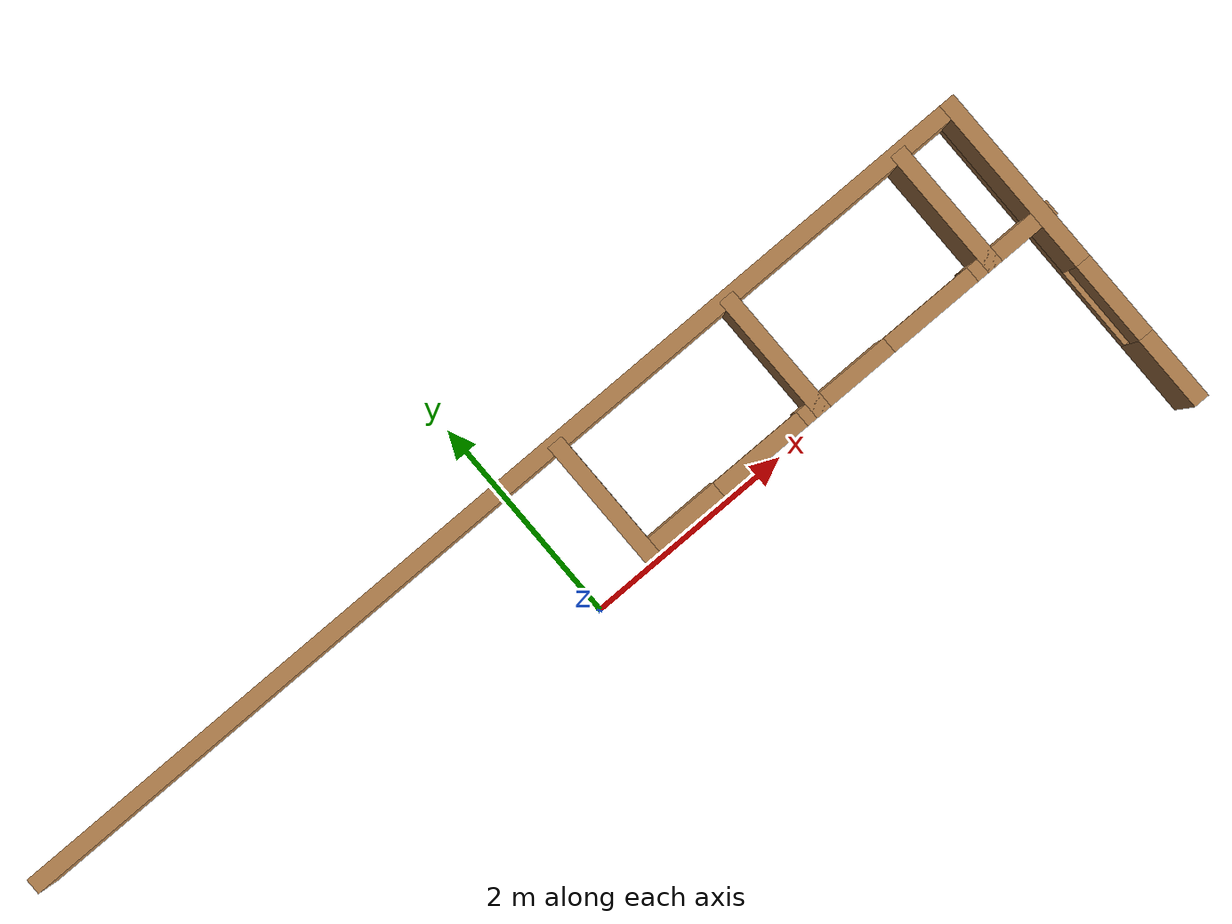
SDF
<sdf version="1.7">
 <model name="room">
  <link name="Wall_14">
   <pose>0.635 0.6925 0 0 -0 1.5708</pose>
   <visual name="Wall_14_Visual">
    <pose>0 0 1.25 0 -0 0</pose>
    <geometry><box><size>1.25 0.15 2.5</size></box></geometry>
    <material>
     <script><uri>file://media/materials/scripts/gazebo.material</uri><name>Gazebo/Wood</name></script>
     <ambient>1 1 1 1</ambient>
     <shader type="pixel"/>
    </material>
    <meta><layer>0</layer></meta>
   </visual>
   <collision name="Wall_14_Collision">
    <pose>0 0 1.25 0 -0 0</pose>
    <geometry><box><size>1.25 0.15 2.5</size></box></geometry>
    <surface>
     <friction>
      <ode><mu>1</mu><mu2>1</mu2><fdir1>0 0 0</fdir1><slip1>0</slip1><slip2>0</slip2></ode>
      <torsional>
       <coefficient>1</coefficient>
       <patch_radius>0</patch_radius>
       <surface_radius>0</surface_radius>
       <use_patch_radius>1</use_patch_radius>
       <ode><slip>0</slip></ode>
      </torsional>
     </friction>
     <bounce><restitution_coefficient>0</restitution_coefficient><threshold>1e+06</threshold></bounce>
     <contact>
      <collide_without_contact>0</collide_without_contact>
      <collide_without_contact_bitmask>1</collide_without_contact_bitmask>
      <collide_bitmask>1</collide_bitmask>
      <ode>
       <soft_cfm>0</soft_cfm>
       <soft_erp>0.2</soft_erp>
       <kp>1e+13</kp>
       <kd>1</kd>
       <max_vel>0.01</max_vel>
       <min_depth>0</min_depth>
      </ode>
      <bullet>
       <split_impulse>1</split_impulse>
       <split_impulse_penetration_threshold>-0.01</split_impulse_penetration_threshold>
       <soft_cfm>0</soft_cfm>
       <soft_erp>0.2</soft_erp>
       <kp>1e+13</kp>
       <kd>1</kd>
      </bullet>
     </contact>
    </surface>
   </collision>
  </link>
  <link name="Wall_3">
   <pose>4.915 -0.2475 0 0 -0 1.5708</pose>
   <visual name="Wall_3_Visual_0">
    <pose>-1.26897 0 1.25 0 -0 0</pose>
    <geometry><box><size>0.712063 0.15 2.5</size></box></geometry>
    <material>
     <script><uri>file://media/materials/scripts/gazebo.material</uri><name>Gazebo/Wood</name></script>
     <ambient>1 1 1 1</ambient>
     <shader type="pixel"/>
    </material>
    <meta><layer>0</layer></meta>
   </visual>
   <visual name="Wall_3_Visual_1">
    <pose>0.356032 0 0.25 0 -0 0</pose>
    <geometry><box><size>2.53794 0.15 0.5</size></box></geometry>
    <material>
     <script><uri>file://media/materials/scripts/gazebo.material</uri><name>Gazebo/Wood</name></script>
     <ambient>1 1 1 1</ambient>
     <shader type="pixel"/>
    </material>
    <meta><layer>0</layer></meta>
   </visual>
   <visual name="Wall_3_Visual_3">
    <pose>-0.512937 0 1.9 0 -0 0</pose>
    <geometry><box><size>0.8 0.15 1.2</size></box></geometry>
    <material>
     <script><uri>file://media/materials/scripts/gazebo.material</uri><name>Gazebo/Wood</name></script>
     <ambient>1 1 1 1</ambient>
     <shader type="pixel"/>
    </material>
    <meta><layer>0</layer></meta>
   </visual>
   <visual name="Wall_3_Visual_2">
    <pose>0.756032 0 1.5 0 -0 0</pose>
    <geometry><box><size>1.73794 0.15 2</size></box></geometry>
    <material>
     <script><uri>file://media/materials/scripts/gazebo.material</uri><name>Gazebo/Wood</name></script>
     <ambient>1 1 1 1</ambient>
     <shader type="pixel"/>
    </material>
    <meta><layer>0</layer></meta>
   </visual>
   <collision name="Wall_3_Collision_0">
    <pose>-1.26897 0 1.25 0 -0 0</pose>
    <geometry><box><size>0.712063 0.15 2.5</size></box></geometry>
    <surface>
     <friction>
      <ode><mu>1</mu><mu2>1</mu2><fdir1>0 0 0</fdir1><slip1>0</slip1><slip2>0</slip2></ode>
      <torsional>
       <coefficient>1</coefficient>
       <patch_radius>0</patch_radius>
       <surface_radius>0</surface_radius>
       <use_patch_radius>1</use_patch_radius>
       <ode><slip>0</slip></ode>
      </torsional>
     </friction>
     <bounce><restitution_coefficient>0</restitution_coefficient><threshold>1e+06</threshold></bounce>
     <contact>
      <collide_without_contact>0</collide_without_contact>
      <collide_without_contact_bitmask>1</collide_without_contact_bitmask>
      <collide_bitmask>1</collide_bitmask>
      <ode>
       <soft_cfm>0</soft_cfm>
       <soft_erp>0.2</soft_erp>
       <kp>1e+13</kp>
       <kd>1</kd>
       <max_vel>0.01</max_vel>
       <min_depth>0</min_depth>
      </ode>
      <bullet>
       <split_impulse>1</split_impulse>
       <split_impulse_penetration_threshold>-0.01</split_impulse_penetration_threshold>
       <soft_cfm>0</soft_cfm>
       <soft_erp>0.2</soft_erp>
       <kp>1e+13</kp>
       <kd>1</kd>
      </bullet>
     </contact>
    </surface>
   </collision>
   <collision name="Wall_3_Collision_1">
    <pose>0.356032 0 0.25 0 -0 0</pose>
    <geometry><box><size>2.53794 0.15 0.5</size></box></geometry>
    <surface>
     <friction>
      <ode><mu>1</mu><mu2>1</mu2><fdir1>0 0 0</fdir1><slip1>0</slip1><slip2>0</slip2></ode>
      <torsional>
       <coefficient>1</coefficient>
       <patch_radius>0</patch_radius>
       <surface_radius>0</surface_radius>
       <use_patch_radius>1</use_patch_radius>
       <ode><slip>0</slip></ode>
      </torsional>
     </friction>
     <bounce><restitution_coefficient>0</restitution_coefficient><threshold>1e+06</threshold></bounce>
     <contact>
      <collide_without_contact>0</collide_without_contact>
      <collide_without_contact_bitmask>1</collide_without_contact_bitmask>
      <collide_bitmask>1</collide_bitmask>
      <ode>
       <soft_cfm>0</soft_cfm>
       <soft_erp>0.2</soft_erp>
       <kp>1e+13</kp>
       <kd>1</kd>
       <max_vel>0.01</max_vel>
       <min_depth>0</min_depth>
      </ode>
      <bullet>
       <split_impulse>1</split_impulse>
       <split_impulse_penetration_threshold>-0.01</split_impulse_penetration_threshold>
       <soft_cfm>0</soft_cfm>
       <soft_erp>0.2</soft_erp>
       <kp>1e+13</kp>
       <kd>1</kd>
      </bullet>
     </contact>
    </surface>
   </collision>
   <collision name="Wall_3_Collision_2">
    <pose>0.756032 0 1.5 0 -0 0</pose>
    <geometry><box><size>1.73794 0.15 2</size></box></geometry>
    <surface>
     <friction>
      <ode><mu>1</mu><mu2>1</mu2><fdir1>0 0 0</fdir1><slip1>0</slip1><slip2>0</slip2></ode>
      <torsional>
       <coefficient>1</coefficient>
       <patch_radius>0</patch_radius>
       <surface_radius>0</surface_radius>
       <use_patch_radius>1</use_patch_radius>
       <ode><slip>0</slip></ode>
      </torsional>
     </friction>
     <bounce><restitution_coefficient>0</restitution_coefficient><threshold>1e+06</threshold></bounce>
     <contact>
      <collide_without_contact>0</collide_without_contact>
      <collide_without_contact_bitmask>1</collide_without_contact_bitmask>
      <collide_bitmask>1</collide_bitmask>
      <ode>
       <soft_cfm>0</soft_cfm>
       <soft_erp>0.2</soft_erp>
       <kp>1e+13</kp>
       <kd>1</kd>
       <max_vel>0.01</max_vel>
       <min_depth>0</min_depth>
      </ode>
      <bullet>
       <split_impulse>1</split_impulse>
       <split_impulse_penetration_threshold>-0.01</split_impulse_penetration_threshold>
       <soft_cfm>0</soft_cfm>
       <soft_erp>0.2</soft_erp>
       <kp>1e+13</kp>
       <kd>1</kd>
      </bullet>
     </contact>
    </surface>
   </collision>
   <collision name="Wall_3_Collision_3">
    <pose>-0.512937 0 1.9 0 -0 0</pose>
    <geometry><box><size>0.8 0.15 1.2</size></box></geometry>
    <surface>
     <friction>
      <ode><mu>1</mu><mu2>1</mu2><fdir1>0 0 0</fdir1><slip1>0</slip1><slip2>0</slip2></ode>
      <torsional>
       <coefficient>1</coefficient>
       <patch_radius>0</patch_radius>
       <surface_radius>0</surface_radius>
       <use_patch_radius>1</use_patch_radius>
       <ode><slip>0</slip></ode>
      </torsional>
     </friction>
     <bounce><restitution_coefficient>0</restitution_coefficient><threshold>1e+06</threshold></bounce>
     <contact>
      <collide_without_contact>0</collide_without_contact>
      <collide_without_contact_bitmask>1</collide_without_contact_bitmask>
      <collide_bitmask>1</collide_bitmask>
      <ode>
       <soft_cfm>0</soft_cfm>
       <soft_erp>0.2</soft_erp>
       <kp>1e+13</kp>
       <kd>1</kd>
       <max_vel>0.01</max_vel>
       <min_depth>0</min_depth>
      </ode>
      <bullet>
       <split_impulse>1</split_impulse>
       <split_impulse_penetration_threshold>-0.01</split_impulse_penetration_threshold>
       <soft_cfm>0</soft_cfm>
       <soft_erp>0.2</soft_erp>
       <kp>1e+13</kp>
       <kd>1</kd>
      </bullet>
     </contact>
    </surface>
   </collision>
  </link>
  <link name="Wall_31">
   <pose>1.56 0.1425 0 0 -0 0</pose>
   <visual name="Wall_31_Visual_0">
    <pose>-0.574862 0 1.25 0 -0 0</pose>
    <geometry><box><size>0.850276 0.15 2.5</size></box></geometry>
    <material>
     <script><uri>file://media/materials/scripts/gazebo.material</uri><name>Gazebo/Wood</name></script>
     <ambient>1 1 1 1</ambient>
     <shader type="pixel"/>
    </material>
    <meta><layer>0</layer></meta>
   </visual>
   <visual name="Wall_31_Visual_1">
    <pose>0.875138 0 1.25 0 -0 0</pose>
    <geometry><box><size>0.249724 0.15 2.5</size></box></geometry>
    <material>
     <script><uri>file://media/materials/scripts/gazebo.material</uri><name>Gazebo/Wood</name></script>
     <ambient>1 1 1 1</ambient>
     <shader type="pixel"/>
    </material>
    <meta><layer>0</layer></meta>
   </visual>
   <visual name="Wall_31_Visual_2">
    <pose>0.300276 0 2.25 0 -0 0</pose>
    <geometry><box><size>0.9 0.15 0.5</size></box></geometry>
    <material>
     <script><uri>file://media/materials/scripts/gazebo.material</uri><name>Gazebo/Wood</name></script>
     <ambient>1 1 1 1</ambient>
     <shader type="pixel"/>
    </material>
    <meta><layer>0</layer></meta>
   </visual>
   <collision name="Wall_31_Collision_0">
    <pose>-0.574862 0 1.25 0 -0 0</pose>
    <geometry><box><size>0.850276 0.15 2.5</size></box></geometry>
    <surface>
     <friction>
      <ode><mu>1</mu><mu2>1</mu2><fdir1>0 0 0</fdir1><slip1>0</slip1><slip2>0</slip2></ode>
      <torsional>
       <coefficient>1</coefficient>
       <patch_radius>0</patch_radius>
       <surface_radius>0</surface_radius>
       <use_patch_radius>1</use_patch_radius>
       <ode><slip>0</slip></ode>
      </torsional>
     </friction>
     <bounce><restitution_coefficient>0</restitution_coefficient><threshold>1e+06</threshold></bounce>
     <contact>
      <collide_without_contact>0</collide_without_contact>
      <collide_without_contact_bitmask>1</collide_without_contact_bitmask>
      <collide_bitmask>1</collide_bitmask>
      <ode>
       <soft_cfm>0</soft_cfm>
       <soft_erp>0.2</soft_erp>
       <kp>1e+13</kp>
       <kd>1</kd>
       <max_vel>0.01</max_vel>
       <min_depth>0</min_depth>
      </ode>
      <bullet>
       <split_impulse>1</split_impulse>
       <split_impulse_penetration_threshold>-0.01</split_impulse_penetration_threshold>
       <soft_cfm>0</soft_cfm>
       <soft_erp>0.2</soft_erp>
       <kp>1e+13</kp>
       <kd>1</kd>
      </bullet>
     </contact>
    </surface>
   </collision>
   <collision name="Wall_31_Collision_2">
    <pose>0.300276 0 2.25 0 -0 0</pose>
    <geometry><box><size>0.9 0.15 0.5</size></box></geometry>
    <surface>
     <friction>
      <ode><mu>1</mu><mu2>1</mu2><fdir1>0 0 0</fdir1><slip1>0</slip1><slip2>0</slip2></ode>
      <torsional>
       <coefficient>1</coefficient>
       <patch_radius>0</patch_radius>
       <surface_radius>0</surface_radius>
       <use_patch_radius>1</use_patch_radius>
       <ode><slip>0</slip></ode>
      </torsional>
     </friction>
     <bounce><restitution_coefficient>0</restitution_coefficient><threshold>1e+06</threshold></bounce>
     <contact>
      <collide_without_contact>0</collide_without_contact>
      <collide_without_contact_bitmask>1</collide_without_contact_bitmask>
      <collide_bitmask>1</collide_bitmask>
      <ode>
       <soft_cfm>0</soft_cfm>
       <soft_erp>0.2</soft_erp>
       <kp>1e+13</kp>
       <kd>1</kd>
       <max_vel>0.01</max_vel>
       <min_depth>0</min_depth>
      </ode>
      <bullet>
       <split_impulse>1</split_impulse>
       <split_impulse_penetration_threshold>-0.01</split_impulse_penetration_threshold>
       <soft_cfm>0</soft_cfm>
       <soft_erp>0.2</soft_erp>
       <kp>1e+13</kp>
       <kd>1</kd>
      </bullet>
     </contact>
    </surface>
   </collision>
   <collision name="Wall_31_Collision_1">
    <pose>0.875138 0 1.25 0 -0 0</pose>
    <geometry><box><size>0.249724 0.15 2.5</size></box></geometry>
    <surface>
     <friction>
      <ode><mu>1</mu><mu2>1</mu2><fdir1>0 0 0</fdir1><slip1>0</slip1><slip2>0</slip2></ode>
      <torsional>
       <coefficient>1</coefficient>
       <patch_radius>0</patch_radius>
       <surface_radius>0</surface_radius>
       <use_patch_radius>1</use_patch_radius>
       <ode><slip>0</slip></ode>
      </torsional>
     </friction>
     <bounce><restitution_coefficient>0</restitution_coefficient><threshold>1e+06</threshold></bounce>
     <contact>
      <collide_without_contact>0</collide_without_contact>
      <collide_without_contact_bitmask>1</collide_without_contact_bitmask>
      <collide_bitmask>1</collide_bitmask>
      <ode>
       <soft_cfm>0</soft_cfm>
       <soft_erp>0.2</soft_erp>
       <kp>1e+13</kp>
       <kd>1</kd>
       <max_vel>0.01</max_vel>
       <min_depth>0</min_depth>
      </ode>
      <bullet>
       <split_impulse>1</split_impulse>
       <split_impulse_penetration_threshold>-0.01</split_impulse_penetration_threshold>
       <soft_cfm>0</soft_cfm>
       <soft_erp>0.2</soft_erp>
       <kp>1e+13</kp>
       <kd>1</kd>
      </bullet>
     </contact>
    </surface>
   </collision>
  </link>
  <link name="Wall_32">
   <pose>2.485 0.6925 0 0 -0 1.5708</pose>
   <visual name="Wall_32_Visual">
    <pose>0 0 1.25 0 -0 0</pose>
    <geometry><box><size>1.25 0.15 2.5</size></box></geometry>
    <material>
     <script><uri>file://media/materials/scripts/gazebo.material</uri><name>Gazebo/Wood</name></script>
     <ambient>1 1 1 1</ambient>
     <shader type="pixel"/>
    </material>
    <meta><layer>0</layer></meta>
   </visual>
   <collision name="Wall_32_Collision">
    <pose>0 0 1.25 0 -0 0</pose>
    <geometry><box><size>1.25 0.15 2.5</size></box></geometry>
    <surface>
     <friction>
      <ode><mu>1</mu><mu2>1</mu2><fdir1>0 0 0</fdir1><slip1>0</slip1><slip2>0</slip2></ode>
      <torsional>
       <coefficient>1</coefficient>
       <patch_radius>0</patch_radius>
       <surface_radius>0</surface_radius>
       <use_patch_radius>1</use_patch_radius>
       <ode><slip>0</slip></ode>
      </torsional>
     </friction>
     <bounce><restitution_coefficient>0</restitution_coefficient><threshold>1e+06</threshold></bounce>
     <contact>
      <collide_without_contact>0</collide_without_contact>
      <collide_without_contact_bitmask>1</collide_without_contact_bitmask>
      <collide_bitmask>1</collide_bitmask>
      <ode>
       <soft_cfm>0</soft_cfm>
       <soft_erp>0.2</soft_erp>
       <kp>1e+13</kp>
       <kd>1</kd>
       <max_vel>0.01</max_vel>
       <min_depth>0</min_depth>
      </ode>
      <bullet>
       <split_impulse>1</split_impulse>
       <split_impulse_penetration_threshold>-0.01</split_impulse_penetration_threshold>
       <soft_cfm>0</soft_cfm>
       <soft_erp>0.2</soft_erp>
       <kp>1e+13</kp>
       <kd>1</kd>
      </bullet>
     </contact>
    </surface>
   </collision>
  </link>
  <link name="Wall_34">
   <pose>3.41 0.1425 0 0 -0 0</pose>
   <visual name="Wall_34_Visual_0">
    <pose>-0.579862 0 1.25 0 -0 0</pose>
    <geometry><box><size>0.840276 0.15 2.5</size></box></geometry>
    <material>
     <script><uri>file://media/materials/scripts/gazebo.material</uri><name>Gazebo/Wood</name></script>
     <ambient>1 1 1 1</ambient>
     <shader type="pixel"/>
    </material>
    <meta><layer>0</layer></meta>
   </visual>
   <visual name="Wall_34_Visual_1">
    <pose>0.870138 0 1.25 0 -0 0</pose>
    <geometry><box><size>0.259724 0.15 2.5</size></box></geometry>
    <material>
     <script><uri>file://media/materials/scripts/gazebo.material</uri><name>Gazebo/Wood</name></script>
     <ambient>1 1 1 1</ambient>
     <shader type="pixel"/>
    </material>
    <meta><layer>0</layer></meta>
   </visual>
   <visual name="Wall_34_Visual_2">
    <pose>0.290276 0 2.25 0 -0 0</pose>
    <geometry><box><size>0.9 0.15 0.5</size></box></geometry>
    <material>
     <script><uri>file://media/materials/scripts/gazebo.material</uri><name>Gazebo/Wood</name></script>
     <ambient>1 1 1 1</ambient>
     <shader type="pixel"/>
    </material>
    <meta><layer>0</layer></meta>
   </visual>
   <collision name="Wall_34_Collision_0">
    <pose>-0.579862 0 1.25 0 -0 0</pose>
    <geometry><box><size>0.840276 0.15 2.5</size></box></geometry>
    <surface>
     <friction>
      <ode><mu>1</mu><mu2>1</mu2><fdir1>0 0 0</fdir1><slip1>0</slip1><slip2>0</slip2></ode>
      <torsional>
       <coefficient>1</coefficient>
       <patch_radius>0</patch_radius>
       <surface_radius>0</surface_radius>
       <use_patch_radius>1</use_patch_radius>
       <ode><slip>0</slip></ode>
      </torsional>
     </friction>
     <bounce><restitution_coefficient>0</restitution_coefficient><threshold>1e+06</threshold></bounce>
     <contact>
      <collide_without_contact>0</collide_without_contact>
      <collide_without_contact_bitmask>1</collide_without_contact_bitmask>
      <collide_bitmask>1</collide_bitmask>
      <ode>
       <soft_cfm>0</soft_cfm>
       <soft_erp>0.2</soft_erp>
       <kp>1e+13</kp>
       <kd>1</kd>
       <max_vel>0.01</max_vel>
       <min_depth>0</min_depth>
      </ode>
      <bullet>
       <split_impulse>1</split_impulse>
       <split_impulse_penetration_threshold>-0.01</split_impulse_penetration_threshold>
       <soft_cfm>0</soft_cfm>
       <soft_erp>0.2</soft_erp>
       <kp>1e+13</kp>
       <kd>1</kd>
      </bullet>
     </contact>
    </surface>
   </collision>
   <collision name="Wall_34_Collision_1">
    <pose>0.870138 0 1.25 0 -0 0</pose>
    <geometry><box><size>0.259724 0.15 2.5</size></box></geometry>
    <surface>
     <friction>
      <ode><mu>1</mu><mu2>1</mu2><fdir1>0 0 0</fdir1><slip1>0</slip1><slip2>0</slip2></ode>
      <torsional>
       <coefficient>1</coefficient>
       <patch_radius>0</patch_radius>
       <surface_radius>0</surface_radius>
       <use_patch_radius>1</use_patch_radius>
       <ode><slip>0</slip></ode>
      </torsional>
     </friction>
     <bounce><restitution_coefficient>0</restitution_coefficient><threshold>1e+06</threshold></bounce>
     <contact>
      <collide_without_contact>0</collide_without_contact>
      <collide_without_contact_bitmask>1</collide_without_contact_bitmask>
      <collide_bitmask>1</collide_bitmask>
      <ode>
       <soft_cfm>0</soft_cfm>
       <soft_erp>0.2</soft_erp>
       <kp>1e+13</kp>
       <kd>1</kd>
       <max_vel>0.01</max_vel>
       <min_depth>0</min_depth>
      </ode>
      <bullet>
       <split_impulse>1</split_impulse>
       <split_impulse_penetration_threshold>-0.01</split_impulse_penetration_threshold>
       <soft_cfm>0</soft_cfm>
       <soft_erp>0.2</soft_erp>
       <kp>1e+13</kp>
       <kd>1</kd>
      </bullet>
     </contact>
    </surface>
   </collision>
   <collision name="Wall_34_Collision_2">
    <pose>0.290276 0 2.25 0 -0 0</pose>
    <geometry><box><size>0.9 0.15 0.5</size></box></geometry>
    <surface>
     <friction>
      <ode><mu>1</mu><mu2>1</mu2><fdir1>0 0 0</fdir1><slip1>0</slip1><slip2>0</slip2></ode>
      <torsional>
       <coefficient>1</coefficient>
       <patch_radius>0</patch_radius>
       <surface_radius>0</surface_radius>
       <use_patch_radius>1</use_patch_radius>
       <ode><slip>0</slip></ode>
      </torsional>
     </friction>
     <bounce><restitution_coefficient>0</restitution_coefficient><threshold>1e+06</threshold></bounce>
     <contact>
      <collide_without_contact>0</collide_without_contact>
      <collide_without_contact_bitmask>1</collide_without_contact_bitmask>
      <collide_bitmask>1</collide_bitmask>
      <ode>
       <soft_cfm>0</soft_cfm>
       <soft_erp>0.2</soft_erp>
       <kp>1e+13</kp>
       <kd>1</kd>
       <max_vel>0.01</max_vel>
       <min_depth>0</min_depth>
      </ode>
      <bullet>
       <split_impulse>1</split_impulse>
       <split_impulse_penetration_threshold>-0.01</split_impulse_penetration_threshold>
       <soft_cfm>0</soft_cfm>
       <soft_erp>0.2</soft_erp>
       <kp>1e+13</kp>
       <kd>1</kd>
      </bullet>
     </contact>
    </surface>
   </collision>
  </link>
  <link name="Wall_35">
   <pose>4.335 0.6925 0 0 -0 1.5708</pose>
   <visual name="Wall_35_Visual">
    <pose>0 0 1.25 0 -0 0</pose>
    <geometry><box><size>1.25 0.15 2.5</size></box></geometry>
    <material>
     <script><uri>file://media/materials/scripts/gazebo.material</uri><name>Gazebo/Wood</name></script>
     <ambient>1 1 1 1</ambient>
     <shader type="pixel"/>
    </material>
    <meta><layer>0</layer></meta>
   </visual>
   <collision name="Wall_35_Collision">
    <pose>0 0 1.25 0 -0 0</pose>
    <geometry><box><size>1.25 0.15 2.5</size></box></geometry>
    <surface>
     <friction>
      <ode><mu>1</mu><mu2>1</mu2><fdir1>0 0 0</fdir1><slip1>0</slip1><slip2>0</slip2></ode>
      <torsional>
       <coefficient>1</coefficient>
       <patch_radius>0</patch_radius>
       <surface_radius>0</surface_radius>
       <use_patch_radius>1</use_patch_radius>
       <ode><slip>0</slip></ode>
      </torsional>
     </friction>
     <bounce><restitution_coefficient>0</restitution_coefficient><threshold>1e+06</threshold></bounce>
     <contact>
      <collide_without_contact>0</collide_without_contact>
      <collide_without_contact_bitmask>1</collide_without_contact_bitmask>
      <collide_bitmask>1</collide_bitmask>
      <ode>
       <soft_cfm>0</soft_cfm>
       <soft_erp>0.2</soft_erp>
       <kp>1e+13</kp>
       <kd>1</kd>
       <max_vel>0.01</max_vel>
       <min_depth>0</min_depth>
      </ode>
      <bullet>
       <split_impulse>1</split_impulse>
       <split_impulse_penetration_threshold>-0.01</split_impulse_penetration_threshold>
       <soft_cfm>0</soft_cfm>
       <soft_erp>0.2</soft_erp>
       <kp>1e+13</kp>
       <kd>1</kd>
      </bullet>
     </contact>
    </surface>
   </collision>
  </link>
  <link name="Wall_37">
   <pose>4.635 0.1425 0 0 -0 0</pose>
   <visual name="Wall_37_Visual">
    <pose>0 0 1.25 0 -0 0</pose>
    <geometry><box><size>0.75 0.15 2.5</size></box></geometry>
    <material>
     <script><uri>file://media/materials/scripts/gazebo.material</uri><name>Gazebo/Wood</name></script>
     <ambient>1 1 1 1</ambient>
     <shader type="pixel"/>
    </material>
    <meta><layer>0</layer></meta>
   </visual>
   <collision name="Wall_37_Collision">
    <pose>0 0 1.25 0 -0 0</pose>
    <geometry><box><size>0.75 0.15 2.5</size></box></geometry>
    <surface>
     <friction>
      <ode><mu>1</mu><mu2>1</mu2><fdir1>0 0 0</fdir1><slip1>0</slip1><slip2>0</slip2></ode>
      <torsional>
       <coefficient>1</coefficient>
       <patch_radius>0</patch_radius>
       <surface_radius>0</surface_radius>
       <use_patch_radius>1</use_patch_radius>
       <ode><slip>0</slip></ode>
      </torsional>
     </friction>
     <bounce><restitution_coefficient>0</restitution_coefficient><threshold>1e+06</threshold></bounce>
     <contact>
      <collide_without_contact>0</collide_without_contact>
      <collide_without_contact_bitmask>1</collide_without_contact_bitmask>
      <collide_bitmask>1</collide_bitmask>
      <ode>
       <soft_cfm>0</soft_cfm>
       <soft_erp>0.2</soft_erp>
       <kp>1e+13</kp>
       <kd>1</kd>
       <max_vel>0.01</max_vel>
       <min_depth>0</min_depth>
      </ode>
      <bullet>
       <split_impulse>1</split_impulse>
       <split_impulse_penetration_threshold>-0.01</split_impulse_penetration_threshold>
       <soft_cfm>0</soft_cfm>
       <soft_erp>0.2</soft_erp>
       <kp>1e+13</kp>
       <kd>1</kd>
      </bullet>
     </contact>
    </surface>
   </collision>
  </link>
  <link name="Wall_4">
   <pose>-0.01 1.3025 0 0 -0 3.14159</pose>
   <visual name="Wall_4_Visual">
    <pose>0 0 1.25 0 -0 0</pose>
    <geometry><box><size>10 0.15 2.5</size></box></geometry>
    <material>
     <script><uri>file://media/materials/scripts/gazebo.material</uri><name>Gazebo/Wood</name></script>
     <ambient>1 1 1 1</ambient>
     <shader type="pixel"/>
    </material>
    <meta><layer>0</layer></meta>
   </visual>
   <collision name="Wall_4_Collision">
    <pose>0 0 1.25 0 -0 0</pose>
    <geometry><box><size>10 0.15 2.5</size></box></geometry>
    <surface>
     <friction>
      <ode><mu>1</mu><mu2>1</mu2><fdir1>0 0 0</fdir1><slip1>0</slip1><slip2>0</slip2></ode>
      <torsional>
       <coefficient>1</coefficient>
       <patch_radius>0</patch_radius>
       <surface_radius>0</surface_radius>
       <use_patch_radius>1</use_patch_radius>
       <ode><slip>0</slip></ode>
      </torsional>
     </friction>
     <bounce><restitution_coefficient>0</restitution_coefficient><threshold>1e+06</threshold></bounce>
     <contact>
      <collide_without_contact>0</collide_without_contact>
      <collide_without_contact_bitmask>1</collide_without_contact_bitmask>
      <collide_bitmask>1</collide_bitmask>
      <ode>
       <soft_cfm>0</soft_cfm>
       <soft_erp>0.2</soft_erp>
       <kp>1e+13</kp>
       <kd>1</kd>
       <max_vel>0.01</max_vel>
       <min_depth>0</min_depth>
      </ode>
      <bullet>
       <split_impulse>1</split_impulse>
       <split_impulse_penetration_threshold>-0.01</split_impulse_penetration_threshold>
       <soft_cfm>0</soft_cfm>
       <soft_erp>0.2</soft_erp>
       <kp>1e+13</kp>
       <kd>1</kd>
      </bullet>
     </contact>
    </surface>
   </collision>
  </link>
  <static>1</static>
 </model>
</sdf>
